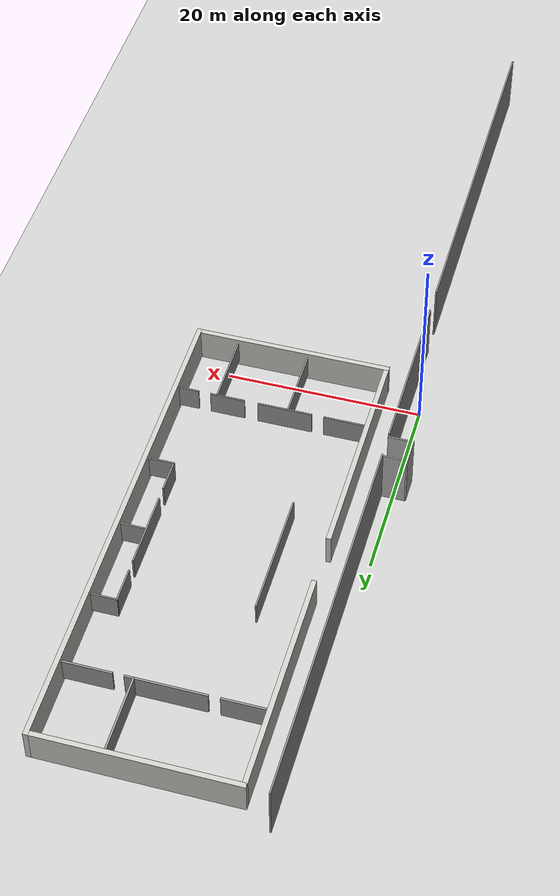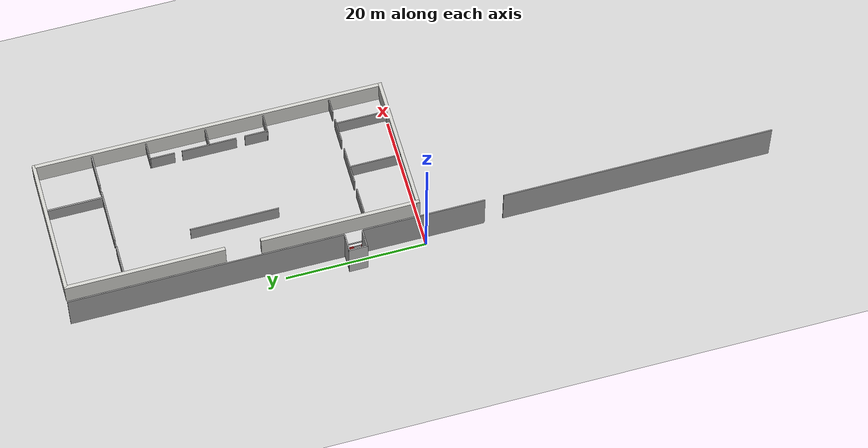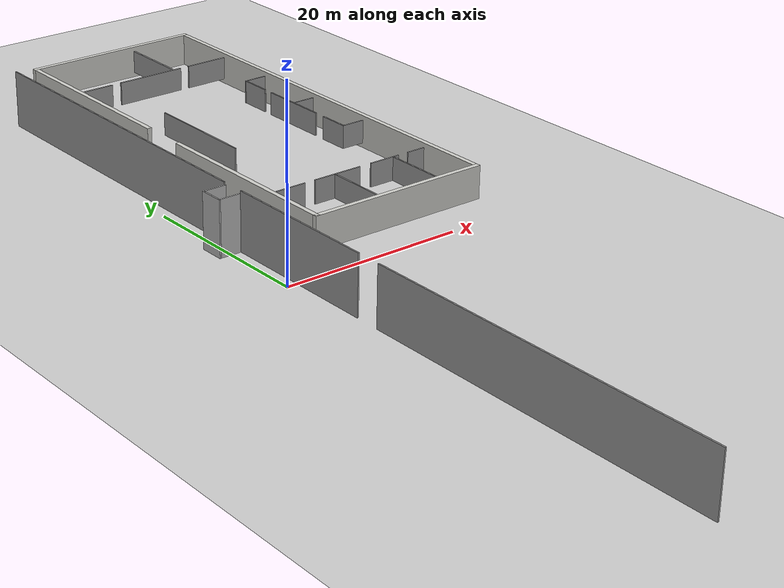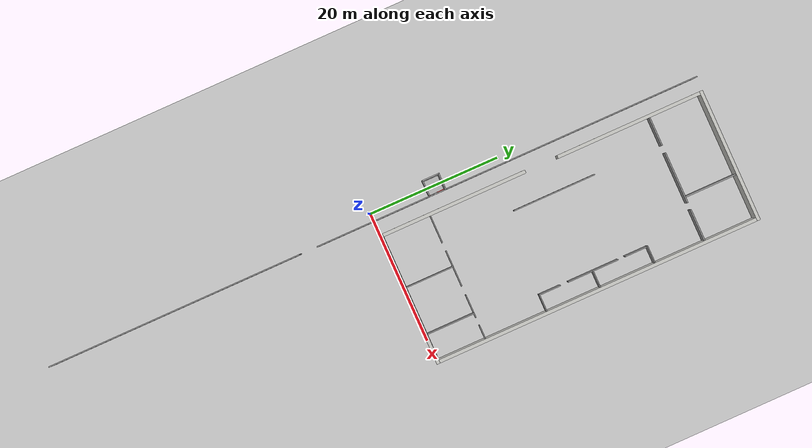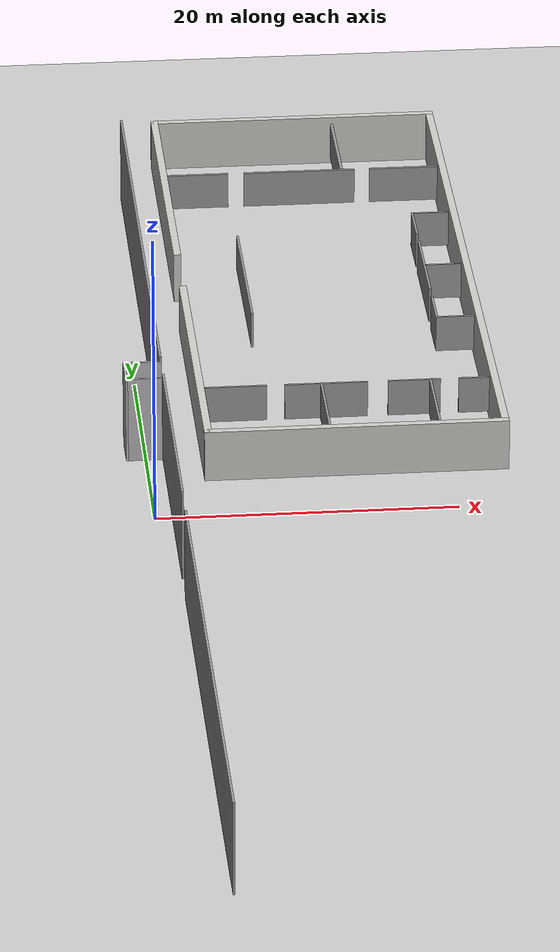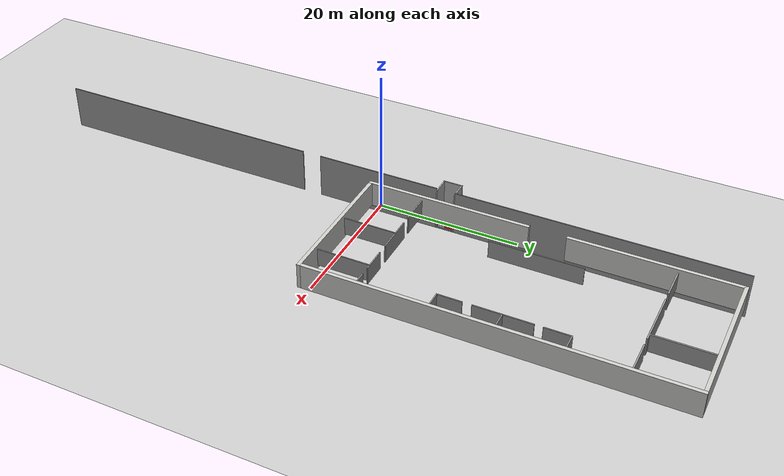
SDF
<sdf version="1.6">
 <world name="default">
  <model name="ground_plane">
   <static>1</static>
   <link name="link">
    <collision name="collision">
     <geometry><plane><normal>0 0 1</normal><size>100 100</size></plane></geometry>
     <surface><friction><ode><mu>100</mu><mu2>50</mu2></ode></friction></surface>
    </collision>
    <visual name="visual">
     <cast_shadows>0</cast_shadows>
     <geometry><plane><normal>0 0 1</normal><size>100 100</size></plane></geometry>
     <material>
      <script><uri>file://media/materials/scripts/gazebo.material</uri><name>Gazebo/Grey</name></script>
     </material>
    </visual>
   </link>
  </model>
  <model name="elevator">
   <pose>-0 10 0.074994 0 -1.1e-05 1e-06</pose>
   <joint name="lift" type="prismatic">
    <parent>world</parent>
    <child>link</child>
    <axis>
     <xyz>0 0 1</xyz>
     <limit><lower>0</lower><upper>10</upper><effort>100000</effort></limit>
     <dynamics>
      <damping>50</damping>
      <spring_reference>0</spring_reference>
      <spring_stiffness>0</spring_stiffness>
     </dynamics>
     <use_parent_model_frame>0</use_parent_model_frame>
    </axis>
    <physics>
     <ode><implicit_spring_damper>1</implicit_spring_damper><limit><cfm>0</cfm><erp>0.2</erp></limit></ode>
    </physics>
   </joint>
   <link name="link">
    <inertial>
     <mass>800</mass>
     <inertia><ixx>1</ixx><ixy>0</ixy><ixz>0</ixz><iyy>1</iyy><iyz>0</iyz><izz>1</izz></inertia>
    </inertial>
    <collision name="floor_collision"><geometry><box><size>2.25 2.25 0.15</size></box></geometry></collision>
    <visual name="floor_visual"><geometry><box><size>2.25 2.25 0.15</size></box></geometry></visual>
    <collision name="wall1_collision">
     <pose>1.0745 0.5725 1.125 0 -0 0</pose>
     <geometry><box><size>0.1 1.15 2.25</size></box></geometry>
    </collision>
    <visual name="wall1_visual">
     <pose>1.0745 0.5725 1.125 0 -0 0</pose>
     <geometry><box><size>0.1 1.15 2.25</size></box></geometry>
     <material><script><name>Gazebo/Red</name><uri>__default__</uri></script></material>
    </visual>
    <collision name="wall2_collision">
     <pose>1.0745 -1.0625 1.125 0 -0 0</pose>
     <geometry><box><size>0.1 0.125 2.25</size></box></geometry>
    </collision>
    <visual name="wall2_visual">
     <pose>1.0745 -1.0625 1.125 0 -0 0</pose>
     <geometry><box><size>0.1 0.125 2.25</size></box></geometry>
     <material><script><name>Gazebo/Red</name><uri>__default__</uri></script></material>
    </visual>
   </link>
   <joint name="door" type="prismatic">
    <parent>link</parent>
    <child>door</child>
    <axis>
     <xyz>0 1 0</xyz>
     <limit><lower>0</lower><upper>1</upper><effort>10</effort></limit>
     <dynamics>
      <damping>2</damping>
      <spring_reference>0</spring_reference>
      <spring_stiffness>0</spring_stiffness>
     </dynamics>
     <use_parent_model_frame>0</use_parent_model_frame>
    </axis>
   </joint>
   <link name="door">
    <pose>1.0745 -0.5 1.125 0 -0 0</pose>
    <inertial>
     <inertia><ixx>1</ixx><ixy>0</ixy><ixz>0</ixz><iyy>1</iyy><iyz>0</iyz><izz>1</izz></inertia>
     <mass>1</mass>
    </inertial>
    <collision name="collision"><geometry><box><size>0.08 1 2.25</size></box></geometry></collision>
    <visual name="visual"><geometry><box><size>0.08 1 2.25</size></box></geometry></visual>
   </link>
   <plugin name="elevator1_plugin" filename="libgazebo_ros_elevator.so">
    <lift_joint>elevator::lift</lift_joint>
    <door_joint>elevator::door</door_joint>
    <floor_height>3.085</floor_height>
    <door_wait_time>10</door_wait_time>
    <topic>gazebo/elevator1</topic>
   </plugin>
  </model>
  <model name="elevator_shaft">
   <static>1</static>
   <link name="link">
    <collision name="shaft_wall1_collision">
     <pose>0 1.25 3 0 -0 0</pose>
     <geometry><box><size>2.5 0.15 6</size></box></geometry>
    </collision>
    <visual name="shaft_wall1_visual">
     <pose>0 1.25 3 0 -0 0</pose>
     <geometry><box><size>2.5 0.15 6</size></box></geometry>
    </visual>
    <collision name="shaft_wall2_collision">
     <pose>0 -1.25 3 0 -0 0</pose>
     <geometry><box><size>2.5 0.15 6</size></box></geometry>
    </collision>
    <visual name="shaft_wall2_visual">
     <pose>0 -1.25 3 0 -0 0</pose>
     <geometry><box><size>2.5 0.15 6</size></box></geometry>
    </visual>
    <collision name="shaft_wall3_collision">
     <pose>-1.25 0 3 0 -0 0</pose>
     <geometry><box><size>0.15 2.7 6</size></box></geometry>
    </collision>
    <visual name="shaft_wall3_visual">
     <pose>-1.25 0 3 0 -0 0</pose>
     <geometry><box><size>0.15 2.7 6</size></box></geometry>
    </visual>
    <collision name="floor0_collision">
     <pose>1.19 0 0.075 0 -0 0</pose>
     <geometry><box><size>0.12 2.5 0.15</size></box></geometry>
    </collision>
    <visual name="floor0_visual">
     <pose>1.19 0 0.075 0 -0 0</pose>
     <geometry><box><size>0.12 2.5 0.15</size></box></geometry>
    </visual>
    <collision name="floor1_collision">
     <pose>1.19 0 3.075 0 -0 0</pose>
     <geometry><box><size>0.12 2.5 0.15</size></box></geometry>
    </collision>
    <visual name="floor1_visual">
     <pose>1.19 0 3.075 0 -0 0</pose>
     <geometry><box><size>0.12 2.5 0.15</size></box></geometry>
    </visual>
   </link>
   <pose>0 10 0 0 -0 0</pose>
  </model>
  <model name="office_clone_clone_0">
   <link name="Wall_1">
    <pose>-24.75 -3e-06 0 0 0 -1.5708</pose>
    <inertial>
     <mass>1</mass>
     <inertia><ixx>1</ixx><ixy>0</ixy><ixz>0</ixz><iyy>1</iyy><iyz>0</iyz><izz>1</izz></inertia>
    </inertial>
    <visual name="Wall_1_Visual">
     <pose>0 0 1.25 0 -0 0</pose>
     <geometry><box><size>20 0.5 3.5</size></box></geometry>
     <material>
      <script><uri>file://media/materials/scripts/gazebo.material</uri><name>Gazebo/CeilingTiled</name></script>
      <ambient>1 1 1 1</ambient>
      <shader type="vertex"><normal_map>__default__</normal_map></shader>
      <diffuse>1 1 1 1</diffuse>
      <specular>0 0 0 1</specular>
      <emissive>0 0 0 1</emissive>
     </material>
     <meta><layer>0</layer></meta>
    </visual>
    <collision name="Wall_1_Collision">
     <pose>0 0 1.25 0 -0 0</pose>
     <geometry><box><size>20 0.5 3.5</size></box></geometry>
     <surface>
      <friction>
       <ode><mu>1</mu><mu2>1</mu2><fdir1>0 0 0</fdir1><slip1>0</slip1><slip2>0</slip2></ode>
       <torsional>
        <coefficient>1</coefficient>
        <patch_radius>0</patch_radius>
        <surface_radius>0</surface_radius>
        <use_patch_radius>1</use_patch_radius>
        <ode><slip>0</slip></ode>
       </torsional>
      </friction>
      <bounce><restitution_coefficient>0</restitution_coefficient><threshold>1e+06</threshold></bounce>
      <contact>
       <collide_without_contact>0</collide_without_contact>
       <collide_without_contact_bitmask>1</collide_without_contact_bitmask>
       <collide_bitmask>1</collide_bitmask>
       <ode>
        <soft_cfm>0</soft_cfm>
        <soft_erp>0.2</soft_erp>
        <kp>1e+13</kp>
        <kd>1</kd>
        <max_vel>0.01</max_vel>
        <min_depth>0</min_depth>
       </ode>
       <bullet>
        <split_impulse>1</split_impulse>
        <split_impulse_penetration_threshold>-0.01</split_impulse_penetration_threshold>
        <soft_cfm>0</soft_cfm>
        <soft_erp>0.2</soft_erp>
        <kp>1e+13</kp>
        <kd>1</kd>
       </bullet>
      </contact>
     </surface>
    </collision>
   </link>
   <link name="Wall_11">
    <pose>24.75 3e-06 0 0 0 -1.5708</pose>
    <inertial>
     <mass>1</mass>
     <inertia><ixx>1</ixx><ixy>0</ixy><ixz>0</ixz><iyy>1</iyy><iyz>0</iyz><izz>1</izz></inertia>
    </inertial>
    <visual name="Wall_11_Visual">
     <pose>0 0 1.25 0 -0 0</pose>
     <geometry><box><size>20 0.5 3.5</size></box></geometry>
     <material>
      <script><uri>file://media/materials/scripts/gazebo.material</uri><name>Gazebo/CeilingTiled</name></script>
      <ambient>1 1 1 1</ambient>
      <shader type="vertex"><normal_map>__default__</normal_map></shader>
      <diffuse>1 1 1 1</diffuse>
      <specular>0 0 0 1</specular>
      <emissive>0 0 0 1</emissive>
     </material>
     <meta><layer>0</layer></meta>
    </visual>
    <collision name="Wall_11_Collision">
     <pose>0 0 1.25 0 -0 0</pose>
     <geometry><box><size>20 0.5 3.5</size></box></geometry>
     <surface>
      <friction>
       <ode><mu>1</mu><mu2>1</mu2><fdir1>0 0 0</fdir1><slip1>0</slip1><slip2>0</slip2></ode>
       <torsional>
        <coefficient>1</coefficient>
        <patch_radius>0</patch_radius>
        <surface_radius>0</surface_radius>
        <use_patch_radius>1</use_patch_radius>
        <ode><slip>0</slip></ode>
       </torsional>
      </friction>
      <bounce><restitution_coefficient>0</restitution_coefficient><threshold>1e+06</threshold></bounce>
      <contact>
       <collide_without_contact>0</collide_without_contact>
       <collide_without_contact_bitmask>1</collide_without_contact_bitmask>
       <collide_bitmask>1</collide_bitmask>
       <ode>
        <soft_cfm>0</soft_cfm>
        <soft_erp>0.2</soft_erp>
        <kp>1e+13</kp>
        <kd>1</kd>
        <max_vel>0.01</max_vel>
        <min_depth>0</min_depth>
       </ode>
       <bullet>
        <split_impulse>1</split_impulse>
        <split_impulse_penetration_threshold>-0.01</split_impulse_penetration_threshold>
        <soft_cfm>0</soft_cfm>
        <soft_erp>0.2</soft_erp>
        <kp>1e+13</kp>
        <kd>1</kd>
       </bullet>
      </contact>
     </surface>
    </collision>
   </link>
   <link name="Wall_13">
    <pose>-16.658 7.127 0 0 0 -1.5708</pose>
    <visual name="Wall_13_Visual">
     <pose>0 0 1.25 0 -0 0</pose>
     <geometry><box><size>4.80017 0.2 2.5</size></box></geometry>
     <material>
      <script><uri>file://media/materials/scripts/gazebo.material</uri><name>Gazebo/Grey</name></script>
      <ambient>1 1 1 1</ambient>
     </material>
     <meta><layer>0</layer></meta>
    </visual>
    <collision name="Wall_13_Collision">
     <pose>0 0 1.25 0 -0 0</pose>
     <geometry><box><size>4.80017 0.2 2.5</size></box></geometry>
     <surface>
      <friction>
       <ode><mu>1</mu><mu2>1</mu2><fdir1>0 0 0</fdir1><slip1>0</slip1><slip2>0</slip2></ode>
       <torsional>
        <coefficient>1</coefficient>
        <patch_radius>0</patch_radius>
        <surface_radius>0</surface_radius>
        <use_patch_radius>1</use_patch_radius>
        <ode><slip>0</slip></ode>
       </torsional>
      </friction>
      <bounce><restitution_coefficient>0</restitution_coefficient><threshold>1e+06</threshold></bounce>
      <contact>
       <collide_without_contact>0</collide_without_contact>
       <collide_without_contact_bitmask>1</collide_without_contact_bitmask>
       <collide_bitmask>1</collide_bitmask>
       <ode>
        <soft_cfm>0</soft_cfm>
        <soft_erp>0.2</soft_erp>
        <kp>1e+13</kp>
        <kd>1</kd>
        <max_vel>0.01</max_vel>
        <min_depth>0</min_depth>
       </ode>
       <bullet>
        <split_impulse>1</split_impulse>
        <split_impulse_penetration_threshold>-0.01</split_impulse_penetration_threshold>
        <soft_cfm>0</soft_cfm>
        <soft_erp>0.2</soft_erp>
        <kp>1e+13</kp>
        <kd>1</kd>
       </bullet>
      </contact>
     </surface>
    </collision>
   </link>
   <link name="Wall_15">
    <pose>-16.658 -0.198 0 0 0 -1.5708</pose>
    <visual name="Wall_15_Visual">
     <pose>0 0 1.25 0 -0 0</pose>
     <geometry><box><size>7.75 0.2 2.5</size></box></geometry>
     <material>
      <script><uri>file://media/materials/scripts/gazebo.material</uri><name>Gazebo/Grey</name></script>
      <ambient>1 1 1 1</ambient>
     </material>
     <meta><layer>0</layer></meta>
    </visual>
    <collision name="Wall_15_Collision">
     <pose>0 0 1.25 0 -0 0</pose>
     <geometry><box><size>7.75 0.2 2.5</size></box></geometry>
     <surface>
      <friction>
       <ode><mu>1</mu><mu2>1</mu2><fdir1>0 0 0</fdir1><slip1>0</slip1><slip2>0</slip2></ode>
       <torsional>
        <coefficient>1</coefficient>
        <patch_radius>0</patch_radius>
        <surface_radius>0</surface_radius>
        <use_patch_radius>1</use_patch_radius>
        <ode><slip>0</slip></ode>
       </torsional>
      </friction>
      <bounce><restitution_coefficient>0</restitution_coefficient><threshold>1e+06</threshold></bounce>
      <contact>
       <collide_without_contact>0</collide_without_contact>
       <collide_without_contact_bitmask>1</collide_without_contact_bitmask>
       <collide_bitmask>1</collide_bitmask>
       <ode>
        <soft_cfm>0</soft_cfm>
        <soft_erp>0.2</soft_erp>
        <kp>1e+13</kp>
        <kd>1</kd>
        <max_vel>0.01</max_vel>
        <min_depth>0</min_depth>
       </ode>
       <bullet>
        <split_impulse>1</split_impulse>
        <split_impulse_penetration_threshold>-0.01</split_impulse_penetration_threshold>
        <soft_cfm>0</soft_cfm>
        <soft_erp>0.2</soft_erp>
        <kp>1e+13</kp>
        <kd>1</kd>
       </bullet>
      </contact>
     </surface>
    </collision>
   </link>
   <link name="Wall_17">
    <pose>-16.658 -7.423 0 0 0 -1.5708</pose>
    <visual name="Wall_17_Visual">
     <pose>0 0 1.25 0 -0 0</pose>
     <geometry><box><size>4.5 0.2 2.5</size></box></geometry>
     <material>
      <script><uri>file://media/materials/scripts/gazebo.material</uri><name>Gazebo/Grey</name></script>
      <ambient>1 1 1 1</ambient>
     </material>
     <meta><layer>0</layer></meta>
    </visual>
    <collision name="Wall_17_Collision">
     <pose>0 0 1.25 0 -0 0</pose>
     <geometry><box><size>4.5 0.2 2.5</size></box></geometry>
     <surface>
      <friction>
       <ode><mu>1</mu><mu2>1</mu2><fdir1>0 0 0</fdir1><slip1>0</slip1><slip2>0</slip2></ode>
       <torsional>
        <coefficient>1</coefficient>
        <patch_radius>0</patch_radius>
        <surface_radius>0</surface_radius>
        <use_patch_radius>1</use_patch_radius>
        <ode><slip>0</slip></ode>
       </torsional>
      </friction>
      <bounce><restitution_coefficient>0</restitution_coefficient><threshold>1e+06</threshold></bounce>
      <contact>
       <collide_without_contact>0</collide_without_contact>
       <collide_without_contact_bitmask>1</collide_without_contact_bitmask>
       <collide_bitmask>1</collide_bitmask>
       <ode>
        <soft_cfm>0</soft_cfm>
        <soft_erp>0.2</soft_erp>
        <kp>1e+13</kp>
        <kd>1</kd>
        <max_vel>0.01</max_vel>
        <min_depth>0</min_depth>
       </ode>
       <bullet>
        <split_impulse>1</split_impulse>
        <split_impulse_penetration_threshold>-0.01</split_impulse_penetration_threshold>
        <soft_cfm>0</soft_cfm>
        <soft_erp>0.2</soft_erp>
        <kp>1e+13</kp>
        <kd>1</kd>
       </bullet>
      </contact>
     </surface>
    </collision>
   </link>
   <link name="Wall_19">
    <pose>-20.703 2.792 0 0 -0 0</pose>
    <visual name="Wall_19_Visual">
     <pose>0 0 1.25 0 -0 0</pose>
     <geometry><box><size>8.04985 0.2 2.5</size></box></geometry>
     <material>
      <script><uri>file://media/materials/scripts/gazebo.material</uri><name>Gazebo/Grey</name></script>
      <ambient>1 1 1 1</ambient>
     </material>
     <meta><layer>0</layer></meta>
    </visual>
    <collision name="Wall_19_Collision">
     <pose>0 0 1.25 0 -0 0</pose>
     <geometry><box><size>8.04985 0.2 2.5</size></box></geometry>
     <surface>
      <friction>
       <ode><mu>1</mu><mu2>1</mu2><fdir1>0 0 0</fdir1><slip1>0</slip1><slip2>0</slip2></ode>
       <torsional>
        <coefficient>1</coefficient>
        <patch_radius>0</patch_radius>
        <surface_radius>0</surface_radius>
        <use_patch_radius>1</use_patch_radius>
        <ode><slip>0</slip></ode>
       </torsional>
      </friction>
      <bounce><restitution_coefficient>0</restitution_coefficient><threshold>1e+06</threshold></bounce>
      <contact>
       <collide_without_contact>0</collide_without_contact>
       <collide_without_contact_bitmask>1</collide_without_contact_bitmask>
       <collide_bitmask>1</collide_bitmask>
       <ode>
        <soft_cfm>0</soft_cfm>
        <soft_erp>0.2</soft_erp>
        <kp>1e+13</kp>
        <kd>1</kd>
        <max_vel>0.01</max_vel>
        <min_depth>0</min_depth>
       </ode>
       <bullet>
        <split_impulse>1</split_impulse>
        <split_impulse_penetration_threshold>-0.01</split_impulse_penetration_threshold>
        <soft_cfm>0</soft_cfm>
        <soft_erp>0.2</soft_erp>
        <kp>1e+13</kp>
        <kd>1</kd>
       </bullet>
      </contact>
     </surface>
    </collision>
   </link>
   <link name="Wall_21">
    <pose>17.2839 8.57905 0 0 0 -1.57072</pose>
    <visual name="Wall_21_Visual">
     <pose>0 0 1.25 0 -0 0</pose>
     <geometry><box><size>2.25 0.15 2.5</size></box></geometry>
     <material>
      <script><uri>file://media/materials/scripts/gazebo.material</uri><name>Gazebo/Grey</name></script>
      <ambient>1 1 1 1</ambient>
     </material>
     <meta><layer>0</layer></meta>
    </visual>
    <collision name="Wall_21_Collision">
     <pose>0 0 1.25 0 -0 0</pose>
     <geometry><box><size>2.25 0.15 2.5</size></box></geometry>
     <surface>
      <friction>
       <ode><mu>1</mu><mu2>1</mu2><fdir1>0 0 0</fdir1><slip1>0</slip1><slip2>0</slip2></ode>
       <torsional>
        <coefficient>1</coefficient>
        <patch_radius>0</patch_radius>
        <surface_radius>0</surface_radius>
        <use_patch_radius>1</use_patch_radius>
        <ode><slip>0</slip></ode>
       </torsional>
      </friction>
      <bounce><restitution_coefficient>0</restitution_coefficient><threshold>1e+06</threshold></bounce>
      <contact>
       <collide_without_contact>0</collide_without_contact>
       <collide_without_contact_bitmask>1</collide_without_contact_bitmask>
       <collide_bitmask>1</collide_bitmask>
       <ode>
        <soft_cfm>0</soft_cfm>
        <soft_erp>0.2</soft_erp>
        <kp>1e+13</kp>
        <kd>1</kd>
        <max_vel>0.01</max_vel>
        <min_depth>0</min_depth>
       </ode>
       <bullet>
        <split_impulse>1</split_impulse>
        <split_impulse_penetration_threshold>-0.01</split_impulse_penetration_threshold>
        <soft_cfm>0</soft_cfm>
        <soft_erp>0.2</soft_erp>
        <kp>1e+13</kp>
        <kd>1</kd>
       </bullet>
      </contact>
     </surface>
    </collision>
   </link>
   <link name="Wall_23">
    <pose>17.2838 4.5041 0 0 0 -1.5708</pose>
    <visual name="Wall_23_Visual">
     <pose>0 0 1.25 0 -0 0</pose>
     <geometry><box><size>3.5 0.15 2.5</size></box></geometry>
     <material>
      <script><uri>file://media/materials/scripts/gazebo.material</uri><name>Gazebo/Grey</name></script>
      <ambient>1 1 1 1</ambient>
     </material>
     <meta><layer>0</layer></meta>
    </visual>
    <collision name="Wall_23_Collision">
     <pose>0 0 1.25 0 -0 0</pose>
     <geometry><box><size>3.5 0.15 2.5</size></box></geometry>
     <surface>
      <friction>
       <ode><mu>1</mu><mu2>1</mu2><fdir1>0 0 0</fdir1><slip1>0</slip1><slip2>0</slip2></ode>
       <torsional>
        <coefficient>1</coefficient>
        <patch_radius>0</patch_radius>
        <surface_radius>0</surface_radius>
        <use_patch_radius>1</use_patch_radius>
        <ode><slip>0</slip></ode>
       </torsional>
      </friction>
      <bounce><restitution_coefficient>0</restitution_coefficient><threshold>1e+06</threshold></bounce>
      <contact>
       <collide_without_contact>0</collide_without_contact>
       <collide_without_contact_bitmask>1</collide_without_contact_bitmask>
       <collide_bitmask>1</collide_bitmask>
       <ode>
        <soft_cfm>0</soft_cfm>
        <soft_erp>0.2</soft_erp>
        <kp>1e+13</kp>
        <kd>1</kd>
        <max_vel>0.01</max_vel>
        <min_depth>0</min_depth>
       </ode>
       <bullet>
        <split_impulse>1</split_impulse>
        <split_impulse_penetration_threshold>-0.01</split_impulse_penetration_threshold>
        <soft_cfm>0</soft_cfm>
        <soft_erp>0.2</soft_erp>
        <kp>1e+13</kp>
        <kd>1</kd>
       </bullet>
      </contact>
     </surface>
    </collision>
   </link>
   <link name="Wall_25">
    <pose>17.2838 -1.3459 0 0 0 -1.5708</pose>
    <visual name="Wall_25_Visual">
     <pose>0 0 1.25 0 -0 0</pose>
     <geometry><box><size>5.5 0.15 2.5</size></box></geometry>
     <material>
      <script><uri>file://media/materials/scripts/gazebo.material</uri><name>Gazebo/Grey</name></script>
      <ambient>1 1 1 1</ambient>
     </material>
     <meta><layer>0</layer></meta>
    </visual>
    <collision name="Wall_25_Collision">
     <pose>0 0 1.25 0 -0 0</pose>
     <geometry><box><size>5.5 0.15 2.5</size></box></geometry>
     <surface>
      <friction>
       <ode><mu>1</mu><mu2>1</mu2><fdir1>0 0 0</fdir1><slip1>0</slip1><slip2>0</slip2></ode>
       <torsional>
        <coefficient>1</coefficient>
        <patch_radius>0</patch_radius>
        <surface_radius>0</surface_radius>
        <use_patch_radius>1</use_patch_radius>
        <ode><slip>0</slip></ode>
       </torsional>
      </friction>
      <bounce><restitution_coefficient>0</restitution_coefficient><threshold>1e+06</threshold></bounce>
      <contact>
       <collide_without_contact>0</collide_without_contact>
       <collide_without_contact_bitmask>1</collide_without_contact_bitmask>
       <collide_bitmask>1</collide_bitmask>
       <ode>
        <soft_cfm>0</soft_cfm>
        <soft_erp>0.2</soft_erp>
        <kp>1e+13</kp>
        <kd>1</kd>
        <max_vel>0.01</max_vel>
        <min_depth>0</min_depth>
       </ode>
       <bullet>
        <split_impulse>1</split_impulse>
        <split_impulse_penetration_threshold>-0.01</split_impulse_penetration_threshold>
        <soft_cfm>0</soft_cfm>
        <soft_erp>0.2</soft_erp>
        <kp>1e+13</kp>
        <kd>1</kd>
       </bullet>
      </contact>
     </surface>
    </collision>
   </link>
   <link name="Wall_27">
    <pose>17.2838 -7.4709 0 0 0 -1.5708</pose>
    <visual name="Wall_27_Visual">
     <pose>0 0 1.25 0 -0 0</pose>
     <geometry><box><size>4.35 0.15 2.5</size></box></geometry>
     <material>
      <script><uri>file://media/materials/scripts/gazebo.material</uri><name>Gazebo/Grey</name></script>
      <ambient>1 1 1 1</ambient>
     </material>
     <meta><layer>0</layer></meta>
    </visual>
    <collision name="Wall_27_Collision">
     <pose>0 0 1.25 0 -0 0</pose>
     <geometry><box><size>4.35 0.15 2.5</size></box></geometry>
     <surface>
      <friction>
       <ode><mu>1</mu><mu2>1</mu2><fdir1>0 0 0</fdir1><slip1>0</slip1><slip2>0</slip2></ode>
       <torsional>
        <coefficient>1</coefficient>
        <patch_radius>0</patch_radius>
        <surface_radius>0</surface_radius>
        <use_patch_radius>1</use_patch_radius>
        <ode><slip>0</slip></ode>
       </torsional>
      </friction>
      <bounce><restitution_coefficient>0</restitution_coefficient><threshold>1e+06</threshold></bounce>
      <contact>
       <collide_without_contact>0</collide_without_contact>
       <collide_without_contact_bitmask>1</collide_without_contact_bitmask>
       <collide_bitmask>1</collide_bitmask>
       <ode>
        <soft_cfm>0</soft_cfm>
        <soft_erp>0.2</soft_erp>
        <kp>1e+13</kp>
        <kd>1</kd>
        <max_vel>0.01</max_vel>
        <min_depth>0</min_depth>
       </ode>
       <bullet>
        <split_impulse>1</split_impulse>
        <split_impulse_penetration_threshold>-0.01</split_impulse_penetration_threshold>
        <soft_cfm>0</soft_cfm>
        <soft_erp>0.2</soft_erp>
        <kp>1e+13</kp>
        <kd>1</kd>
       </bullet>
      </contact>
     </surface>
    </collision>
   </link>
   <link name="Wall_29">
    <pose>20.9993 5.58355 0 0 -0 0</pose>
    <visual name="Wall_29_Visual">
     <pose>0 0 1.25 0 -0 0</pose>
     <geometry><box><size>7.5 0.15 2.5</size></box></geometry>
     <material>
      <script><uri>file://media/materials/scripts/gazebo.material</uri><name>Gazebo/Grey</name></script>
      <ambient>1 1 1 1</ambient>
     </material>
     <meta><layer>0</layer></meta>
    </visual>
    <collision name="Wall_29_Collision">
     <pose>0 0 1.25 0 -0 0</pose>
     <geometry><box><size>7.5 0.15 2.5</size></box></geometry>
     <surface>
      <friction>
       <ode><mu>1</mu><mu2>1</mu2><fdir1>0 0 0</fdir1><slip1>0</slip1><slip2>0</slip2></ode>
       <torsional>
        <coefficient>1</coefficient>
        <patch_radius>0</patch_radius>
        <surface_radius>0</surface_radius>
        <use_patch_radius>1</use_patch_radius>
        <ode><slip>0</slip></ode>
       </torsional>
      </friction>
      <bounce><restitution_coefficient>0</restitution_coefficient><threshold>1e+06</threshold></bounce>
      <contact>
       <collide_without_contact>0</collide_without_contact>
       <collide_without_contact_bitmask>1</collide_without_contact_bitmask>
       <collide_bitmask>1</collide_bitmask>
       <ode>
        <soft_cfm>0</soft_cfm>
        <soft_erp>0.2</soft_erp>
        <kp>1e+13</kp>
        <kd>1</kd>
        <max_vel>0.01</max_vel>
        <min_depth>0</min_depth>
       </ode>
       <bullet>
        <split_impulse>1</split_impulse>
        <split_impulse_penetration_threshold>-0.01</split_impulse_penetration_threshold>
        <soft_cfm>0</soft_cfm>
        <soft_erp>0.2</soft_erp>
        <kp>1e+13</kp>
        <kd>1</kd>
       </bullet>
      </contact>
     </surface>
    </collision>
   </link>
   <link name="Wall_3">
    <pose>-1e-06 9.75 0 0 -0 0</pose>
    <inertial>
     <mass>1</mass>
     <inertia><ixx>1</ixx><ixy>0</ixy><ixz>0</ixz><iyy>1</iyy><iyz>0</iyz><izz>1</izz></inertia>
    </inertial>
    <visual name="Wall_3_Visual">
     <pose>0 0 1.25 0 -0 0</pose>
     <geometry><box><size>50 0.5 3.5</size></box></geometry>
     <material>
      <script><uri>file://media/materials/scripts/gazebo.material</uri><name>Gazebo/CeilingTiled</name></script>
      <ambient>1 1 1 1</ambient>
      <shader type="vertex"><normal_map>__default__</normal_map></shader>
      <diffuse>1 1 1 1</diffuse>
      <specular>0 0 0 1</specular>
      <emissive>0 0 0 1</emissive>
     </material>
     <meta><layer>0</layer></meta>
    </visual>
    <collision name="Wall_3_Collision">
     <pose>0 0 1.25 0 -0 0</pose>
     <geometry><box><size>50 0.5 3.5</size></box></geometry>
     <surface>
      <friction>
       <ode><mu>1</mu><mu2>1</mu2><fdir1>0 0 0</fdir1><slip1>0</slip1><slip2>0</slip2></ode>
       <torsional>
        <coefficient>1</coefficient>
        <patch_radius>0</patch_radius>
        <surface_radius>0</surface_radius>
        <use_patch_radius>1</use_patch_radius>
        <ode><slip>0</slip></ode>
       </torsional>
      </friction>
      <bounce><restitution_coefficient>0</restitution_coefficient><threshold>1e+06</threshold></bounce>
      <contact>
       <collide_without_contact>0</collide_without_contact>
       <collide_without_contact_bitmask>1</collide_without_contact_bitmask>
       <collide_bitmask>1</collide_bitmask>
       <ode>
        <soft_cfm>0</soft_cfm>
        <soft_erp>0.2</soft_erp>
        <kp>1e+13</kp>
        <kd>1</kd>
        <max_vel>0.01</max_vel>
        <min_depth>0</min_depth>
       </ode>
       <bullet>
        <split_impulse>1</split_impulse>
        <split_impulse_penetration_threshold>-0.01</split_impulse_penetration_threshold>
        <soft_cfm>0</soft_cfm>
        <soft_erp>0.2</soft_erp>
        <kp>1e+13</kp>
        <kd>1</kd>
       </bullet>
      </contact>
     </surface>
    </collision>
   </link>
   <link name="Wall_31">
    <pose>20.9993 -1.658 0 0 -0 0</pose>
    <visual name="Wall_31_Visual">
     <pose>0 0 1.25 0 -0 0</pose>
     <geometry><box><size>7.5 0.15 2.5</size></box></geometry>
     <material>
      <script><uri>file://media/materials/scripts/gazebo.material</uri><name>Gazebo/Grey</name></script>
      <ambient>1 1 1 1</ambient>
     </material>
     <meta><layer>0</layer></meta>
    </visual>
    <collision name="Wall_31_Collision">
     <pose>0 0 1.25 0 -0 0</pose>
     <geometry><box><size>7.5 0.15 2.5</size></box></geometry>
     <surface>
      <friction>
       <ode><mu>1</mu><mu2>1</mu2><fdir1>0 0 0</fdir1><slip1>0</slip1><slip2>0</slip2></ode>
       <torsional>
        <coefficient>1</coefficient>
        <patch_radius>0</patch_radius>
        <surface_radius>0</surface_radius>
        <use_patch_radius>1</use_patch_radius>
        <ode><slip>0</slip></ode>
       </torsional>
      </friction>
      <bounce><restitution_coefficient>0</restitution_coefficient><threshold>1e+06</threshold></bounce>
      <contact>
       <collide_without_contact>0</collide_without_contact>
       <collide_without_contact_bitmask>1</collide_without_contact_bitmask>
       <collide_bitmask>1</collide_bitmask>
       <ode>
        <soft_cfm>0</soft_cfm>
        <soft_erp>0.2</soft_erp>
        <kp>1e+13</kp>
        <kd>1</kd>
        <max_vel>0.01</max_vel>
        <min_depth>0</min_depth>
       </ode>
       <bullet>
        <split_impulse>1</split_impulse>
        <split_impulse_penetration_threshold>-0.01</split_impulse_penetration_threshold>
        <soft_cfm>0</soft_cfm>
        <soft_erp>0.2</soft_erp>
        <kp>1e+13</kp>
        <kd>1</kd>
       </bullet>
      </contact>
     </surface>
    </collision>
   </link>
   <link name="Wall_34">
    <pose>-8.97184 8.28865 0 0 0 -1.5708</pose>
    <visual name="Wall_34_Visual">
     <pose>0 0 1.25 0 -0 0</pose>
     <geometry><box><size>2.75032 0.15 2.5</size></box></geometry>
     <material>
      <script><uri>file://media/materials/scripts/gazebo.material</uri><name>Gazebo/Grey</name></script>
      <ambient>1 1 1 1</ambient>
     </material>
     <meta><layer>0</layer></meta>
    </visual>
    <collision name="Wall_34_Collision">
     <pose>0 0 1.25 0 -0 0</pose>
     <geometry><box><size>2.75032 0.15 2.5</size></box></geometry>
     <surface>
      <friction>
       <ode><mu>1</mu><mu2>1</mu2><fdir1>0 0 0</fdir1><slip1>0</slip1><slip2>0</slip2></ode>
       <torsional>
        <coefficient>1</coefficient>
        <patch_radius>0</patch_radius>
        <surface_radius>0</surface_radius>
        <use_patch_radius>1</use_patch_radius>
        <ode><slip>0</slip></ode>
       </torsional>
      </friction>
      <bounce><restitution_coefficient>0</restitution_coefficient><threshold>1e+06</threshold></bounce>
      <contact>
       <collide_without_contact>0</collide_without_contact>
       <collide_without_contact_bitmask>1</collide_without_contact_bitmask>
       <collide_bitmask>1</collide_bitmask>
       <ode>
        <soft_cfm>0</soft_cfm>
        <soft_erp>0.2</soft_erp>
        <kp>1e+13</kp>
        <kd>1</kd>
        <max_vel>0.01</max_vel>
        <min_depth>0</min_depth>
       </ode>
       <bullet>
        <split_impulse>1</split_impulse>
        <split_impulse_penetration_threshold>-0.01</split_impulse_penetration_threshold>
        <soft_cfm>0</soft_cfm>
        <soft_erp>0.2</soft_erp>
        <kp>1e+13</kp>
        <kd>1</kd>
       </bullet>
      </contact>
     </surface>
    </collision>
   </link>
   <link name="Wall_35">
    <pose>-7.25638 6.98865 0 0 -0 0</pose>
    <visual name="Wall_35_Visual">
     <pose>0 0 1.25 0 -0 0</pose>
     <geometry><box><size>3.5 0.15 2.5</size></box></geometry>
     <material>
      <script><uri>file://media/materials/scripts/gazebo.material</uri><name>Gazebo/Grey</name></script>
      <ambient>1 1 1 1</ambient>
     </material>
     <meta><layer>0</layer></meta>
    </visual>
    <collision name="Wall_35_Collision">
     <pose>0 0 1.25 0 -0 0</pose>
     <geometry><box><size>3.5 0.15 2.5</size></box></geometry>
     <surface>
      <friction>
       <ode><mu>1</mu><mu2>1</mu2><fdir1>0 0 0</fdir1><slip1>0</slip1><slip2>0</slip2></ode>
       <torsional>
        <coefficient>1</coefficient>
        <patch_radius>0</patch_radius>
        <surface_radius>0</surface_radius>
        <use_patch_radius>1</use_patch_radius>
        <ode><slip>0</slip></ode>
       </torsional>
      </friction>
      <bounce><restitution_coefficient>0</restitution_coefficient><threshold>1e+06</threshold></bounce>
      <contact>
       <collide_without_contact>0</collide_without_contact>
       <collide_without_contact_bitmask>1</collide_without_contact_bitmask>
       <collide_bitmask>1</collide_bitmask>
       <ode>
        <soft_cfm>0</soft_cfm>
        <soft_erp>0.2</soft_erp>
        <kp>1e+13</kp>
        <kd>1</kd>
        <max_vel>0.01</max_vel>
        <min_depth>0</min_depth>
       </ode>
       <bullet>
        <split_impulse>1</split_impulse>
        <split_impulse_penetration_threshold>-0.01</split_impulse_penetration_threshold>
        <soft_cfm>0</soft_cfm>
        <soft_erp>0.2</soft_erp>
        <kp>1e+13</kp>
        <kd>1</kd>
       </bullet>
      </contact>
     </surface>
    </collision>
   </link>
   <link name="Wall_37">
    <pose>-0.572 6.989 0 0 -0 0</pose>
    <visual name="Wall_37_Visual">
     <pose>0 0 1.25 0 -0 0</pose>
     <geometry><box><size>7.75 0.15 2.5</size></box></geometry>
     <material>
      <script><uri>file://media/materials/scripts/gazebo.material</uri><name>Gazebo/Grey</name></script>
      <ambient>1 1 1 1</ambient>
     </material>
     <meta><layer>0</layer></meta>
    </visual>
    <collision name="Wall_37_Collision">
     <pose>0 0 1.25 0 -0 0</pose>
     <geometry><box><size>7.75 0.15 2.5</size></box></geometry>
     <surface>
      <friction>
       <ode><mu>1</mu><mu2>1</mu2><fdir1>0 0 0</fdir1><slip1>0</slip1><slip2>0</slip2></ode>
       <torsional>
        <coefficient>1</coefficient>
        <patch_radius>0</patch_radius>
        <surface_radius>0</surface_radius>
        <use_patch_radius>1</use_patch_radius>
        <ode><slip>0</slip></ode>
       </torsional>
      </friction>
      <bounce><restitution_coefficient>0</restitution_coefficient><threshold>1e+06</threshold></bounce>
      <contact>
       <collide_without_contact>0</collide_without_contact>
       <collide_without_contact_bitmask>1</collide_without_contact_bitmask>
       <collide_bitmask>1</collide_bitmask>
       <ode>
        <soft_cfm>0</soft_cfm>
        <soft_erp>0.2</soft_erp>
        <kp>1e+13</kp>
        <kd>1</kd>
        <max_vel>0.01</max_vel>
        <min_depth>0</min_depth>
       </ode>
       <bullet>
        <split_impulse>1</split_impulse>
        <split_impulse_penetration_threshold>-0.01</split_impulse_penetration_threshold>
        <soft_cfm>0</soft_cfm>
        <soft_erp>0.2</soft_erp>
        <kp>1e+13</kp>
        <kd>1</kd>
       </bullet>
      </contact>
     </surface>
    </collision>
   </link>
   <link name="Wall_39">
    <pose>6.17808 6.98882 0 0 0 -0.00011</pose>
    <visual name="Wall_39_Visual">
     <pose>0 0 1.25 0 -0 0</pose>
     <geometry><box><size>3.35 0.15 2.5</size></box></geometry>
     <material>
      <script><uri>file://media/materials/scripts/gazebo.material</uri><name>Gazebo/Grey</name></script>
      <ambient>1 1 1 1</ambient>
     </material>
     <meta><layer>0</layer></meta>
    </visual>
    <collision name="Wall_39_Collision">
     <pose>0 0 1.25 0 -0 0</pose>
     <geometry><box><size>3.35 0.15 2.5</size></box></geometry>
     <surface>
      <friction>
       <ode><mu>1</mu><mu2>1</mu2><fdir1>0 0 0</fdir1><slip1>0</slip1><slip2>0</slip2></ode>
       <torsional>
        <coefficient>1</coefficient>
        <patch_radius>0</patch_radius>
        <surface_radius>0</surface_radius>
        <use_patch_radius>1</use_patch_radius>
        <ode><slip>0</slip></ode>
       </torsional>
      </friction>
      <bounce><restitution_coefficient>0</restitution_coefficient><threshold>1e+06</threshold></bounce>
      <contact>
       <collide_without_contact>0</collide_without_contact>
       <collide_without_contact_bitmask>1</collide_without_contact_bitmask>
       <collide_bitmask>1</collide_bitmask>
       <ode>
        <soft_cfm>0</soft_cfm>
        <soft_erp>0.2</soft_erp>
        <kp>1e+13</kp>
        <kd>1</kd>
        <max_vel>0.01</max_vel>
        <min_depth>0</min_depth>
       </ode>
       <bullet>
        <split_impulse>1</split_impulse>
        <split_impulse_penetration_threshold>-0.01</split_impulse_penetration_threshold>
        <soft_cfm>0</soft_cfm>
        <soft_erp>0.2</soft_erp>
        <kp>1e+13</kp>
        <kd>1</kd>
       </bullet>
      </contact>
     </surface>
    </collision>
   </link>
   <link name="Wall_40">
    <pose>7.77816 8.28865 0 0 -0 1.5708</pose>
    <visual name="Wall_40_Visual">
     <pose>0 0 1.25 0 -0 0</pose>
     <geometry><box><size>2.75 0.15 2.5</size></box></geometry>
     <material>
      <script><uri>file://media/materials/scripts/gazebo.material</uri><name>Gazebo/Grey</name></script>
      <ambient>1 1 1 1</ambient>
     </material>
     <meta><layer>0</layer></meta>
    </visual>
    <collision name="Wall_40_Collision">
     <pose>0 0 1.25 0 -0 0</pose>
     <geometry><box><size>2.75 0.15 2.5</size></box></geometry>
     <surface>
      <friction>
       <ode><mu>1</mu><mu2>1</mu2><fdir1>0 0 0</fdir1><slip1>0</slip1><slip2>0</slip2></ode>
       <torsional>
        <coefficient>1</coefficient>
        <patch_radius>0</patch_radius>
        <surface_radius>0</surface_radius>
        <use_patch_radius>1</use_patch_radius>
        <ode><slip>0</slip></ode>
       </torsional>
      </friction>
      <bounce><restitution_coefficient>0</restitution_coefficient><threshold>1e+06</threshold></bounce>
      <contact>
       <collide_without_contact>0</collide_without_contact>
       <collide_without_contact_bitmask>1</collide_without_contact_bitmask>
       <collide_bitmask>1</collide_bitmask>
       <ode>
        <soft_cfm>0</soft_cfm>
        <soft_erp>0.2</soft_erp>
        <kp>1e+13</kp>
        <kd>1</kd>
        <max_vel>0.01</max_vel>
        <min_depth>0</min_depth>
       </ode>
       <bullet>
        <split_impulse>1</split_impulse>
        <split_impulse_penetration_threshold>-0.01</split_impulse_penetration_threshold>
        <soft_cfm>0</soft_cfm>
        <soft_erp>0.2</soft_erp>
        <kp>1e+13</kp>
        <kd>1</kd>
       </bullet>
      </contact>
     </surface>
    </collision>
   </link>
   <link name="Wall_42">
    <pose>-0.516625 8.36956 0 0 0 -1.5708</pose>
    <visual name="Wall_42_Visual">
     <pose>0 0 1.25 0 -0 0</pose>
     <geometry><box><size>2.75 0.15 2.5</size></box></geometry>
     <material>
      <script><uri>file://media/materials/scripts/gazebo.material</uri><name>Gazebo/Grey</name></script>
      <ambient>1 1 1 1</ambient>
     </material>
     <meta><layer>0</layer></meta>
    </visual>
    <collision name="Wall_42_Collision">
     <pose>0 0 1.25 0 -0 0</pose>
     <geometry><box><size>2.75 0.15 2.5</size></box></geometry>
     <surface>
      <friction>
       <ode><mu>1</mu><mu2>1</mu2><fdir1>0 0 0</fdir1><slip1>0</slip1><slip2>0</slip2></ode>
       <torsional>
        <coefficient>1</coefficient>
        <patch_radius>0</patch_radius>
        <surface_radius>0</surface_radius>
        <use_patch_radius>1</use_patch_radius>
        <ode><slip>0</slip></ode>
       </torsional>
      </friction>
      <bounce><restitution_coefficient>0</restitution_coefficient><threshold>1e+06</threshold></bounce>
      <contact>
       <collide_without_contact>0</collide_without_contact>
       <collide_without_contact_bitmask>1</collide_without_contact_bitmask>
       <collide_bitmask>1</collide_bitmask>
       <ode>
        <soft_cfm>0</soft_cfm>
        <soft_erp>0.2</soft_erp>
        <kp>1e+13</kp>
        <kd>1</kd>
        <max_vel>0.01</max_vel>
        <min_depth>0</min_depth>
       </ode>
       <bullet>
        <split_impulse>1</split_impulse>
        <split_impulse_penetration_threshold>-0.01</split_impulse_penetration_threshold>
        <soft_cfm>0</soft_cfm>
        <soft_erp>0.2</soft_erp>
        <kp>1e+13</kp>
        <kd>1</kd>
       </bullet>
      </contact>
     </surface>
    </collision>
   </link>
   <link name="Wall_44">
    <pose>-0.086317 -5.33946 0 0 -0 0</pose>
    <visual name="Wall_44_Visual">
     <pose>0 0 1.25 0 -0 0</pose>
     <geometry><box><size>12.5 0.15 2.5</size></box></geometry>
     <material>
      <script><uri>file://media/materials/scripts/gazebo.material</uri><name>Gazebo/Grey</name></script>
      <ambient>1 1 1 1</ambient>
     </material>
     <meta><layer>0</layer></meta>
    </visual>
    <collision name="Wall_44_Collision">
     <pose>0 0 1.25 0 -0 0</pose>
     <geometry><box><size>12.5 0.15 2.5</size></box></geometry>
     <surface>
      <friction>
       <ode><mu>1</mu><mu2>1</mu2><fdir1>0 0 0</fdir1><slip1>0</slip1><slip2>0</slip2></ode>
       <torsional>
        <coefficient>1</coefficient>
        <patch_radius>0</patch_radius>
        <surface_radius>0</surface_radius>
        <use_patch_radius>1</use_patch_radius>
        <ode><slip>0</slip></ode>
       </torsional>
      </friction>
      <bounce><restitution_coefficient>0</restitution_coefficient><threshold>1e+06</threshold></bounce>
      <contact>
       <collide_without_contact>0</collide_without_contact>
       <collide_without_contact_bitmask>1</collide_without_contact_bitmask>
       <collide_bitmask>1</collide_bitmask>
       <ode>
        <soft_cfm>0</soft_cfm>
        <soft_erp>0.2</soft_erp>
        <kp>1e+13</kp>
        <kd>1</kd>
        <max_vel>0.01</max_vel>
        <min_depth>0</min_depth>
       </ode>
       <bullet>
        <split_impulse>1</split_impulse>
        <split_impulse_penetration_threshold>-0.01</split_impulse_penetration_threshold>
        <soft_cfm>0</soft_cfm>
        <soft_erp>0.2</soft_erp>
        <kp>1e+13</kp>
        <kd>1</kd>
       </bullet>
      </contact>
     </surface>
    </collision>
   </link>
   <link name="Wall_7">
    <pose>-13.75 -9.75 0 0 -0 0</pose>
    <inertial>
     <mass>1</mass>
     <inertia><ixx>1</ixx><ixy>0</ixy><ixz>0</ixz><iyy>1</iyy><iyz>0</iyz><izz>1</izz></inertia>
    </inertial>
    <visual name="Wall_7_Visual">
     <pose>0 0 1.25 0 -0 0</pose>
     <geometry><box><size>22.5 0.5 3.5</size></box></geometry>
     <material>
      <script><uri>file://media/materials/scripts/gazebo.material</uri><name>Gazebo/CeilingTiled</name></script>
      <ambient>1 1 1 1</ambient>
      <shader type="vertex"><normal_map>__default__</normal_map></shader>
      <diffuse>1 1 1 1</diffuse>
      <specular>0 0 0 1</specular>
      <emissive>0 0 0 1</emissive>
     </material>
     <meta><layer>0</layer></meta>
    </visual>
    <collision name="Wall_7_Collision">
     <pose>0 0 1.25 0 -0 0</pose>
     <geometry><box><size>22.5 0.5 3.5</size></box></geometry>
     <surface>
      <friction>
       <ode><mu>1</mu><mu2>1</mu2><fdir1>0 0 0</fdir1><slip1>0</slip1><slip2>0</slip2></ode>
       <torsional>
        <coefficient>1</coefficient>
        <patch_radius>0</patch_radius>
        <surface_radius>0</surface_radius>
        <use_patch_radius>1</use_patch_radius>
        <ode><slip>0</slip></ode>
       </torsional>
      </friction>
      <bounce><restitution_coefficient>0</restitution_coefficient><threshold>1e+06</threshold></bounce>
      <contact>
       <collide_without_contact>0</collide_without_contact>
       <collide_without_contact_bitmask>1</collide_without_contact_bitmask>
       <collide_bitmask>1</collide_bitmask>
       <ode>
        <soft_cfm>0</soft_cfm>
        <soft_erp>0.2</soft_erp>
        <kp>1e+13</kp>
        <kd>1</kd>
        <max_vel>0.01</max_vel>
        <min_depth>0</min_depth>
       </ode>
       <bullet>
        <split_impulse>1</split_impulse>
        <split_impulse_penetration_threshold>-0.01</split_impulse_penetration_threshold>
        <soft_cfm>0</soft_cfm>
        <soft_erp>0.2</soft_erp>
        <kp>1e+13</kp>
        <kd>1</kd>
       </bullet>
      </contact>
     </surface>
    </collision>
   </link>
   <link name="Wall_9">
    <pose>13.7296 -9.74954 0 0 -0 0</pose>
    <inertial>
     <mass>1</mass>
     <inertia><ixx>1</ixx><ixy>0</ixy><ixz>0</ixz><iyy>1</iyy><iyz>0</iyz><izz>1</izz></inertia>
    </inertial>
    <visual name="Wall_9_Visual">
     <pose>0 0 1.25 0 -0 0</pose>
     <geometry><box><size>22.5 0.5 3.5</size></box></geometry>
     <material>
      <script><uri>file://media/materials/scripts/gazebo.material</uri><name>Gazebo/CeilingTiled</name></script>
      <ambient>1 1 1 1</ambient>
      <shader type="vertex"><normal_map>__default__</normal_map></shader>
      <diffuse>1 1 1 1</diffuse>
      <specular>0 0 0 1</specular>
      <emissive>0 0 0 1</emissive>
     </material>
     <meta><layer>0</layer></meta>
    </visual>
    <collision name="Wall_9_Collision">
     <pose>0 0 1.25 0 -0 0</pose>
     <geometry><box><size>22.5 0.5 3.5</size></box></geometry>
     <surface>
      <friction>
       <ode><mu>1</mu><mu2>1</mu2><fdir1>0 0 0</fdir1><slip1>0</slip1><slip2>0</slip2></ode>
       <torsional>
        <coefficient>1</coefficient>
        <patch_radius>0</patch_radius>
        <surface_radius>0</surface_radius>
        <use_patch_radius>1</use_patch_radius>
        <ode><slip>0</slip></ode>
       </torsional>
      </friction>
      <bounce><restitution_coefficient>0</restitution_coefficient><threshold>1e+06</threshold></bounce>
      <contact>
       <collide_without_contact>0</collide_without_contact>
       <collide_without_contact_bitmask>1</collide_without_contact_bitmask>
       <collide_bitmask>1</collide_bitmask>
       <ode>
        <soft_cfm>0</soft_cfm>
        <soft_erp>0.2</soft_erp>
        <kp>1e+13</kp>
        <kd>1</kd>
        <max_vel>0.01</max_vel>
        <min_depth>0</min_depth>
       </ode>
       <bullet>
        <split_impulse>1</split_impulse>
        <split_impulse_penetration_threshold>-0.01</split_impulse_penetration_threshold>
        <soft_cfm>0</soft_cfm>
        <soft_erp>0.2</soft_erp>
        <kp>1e+13</kp>
        <kd>1</kd>
       </bullet>
      </contact>
     </surface>
    </collision>
   </link>
   <static>1</static>
   <pose>13.2499 25 3.15 0 0 -1.5708</pose>
  </model>
  <model name="two_walls">
   <link name="Wall_0">
    <pose>0 30.7 0 0 0 -1.5708</pose>
    <inertial>
     <mass>1</mass>
     <inertia><ixx>1</ixx><ixy>0</ixy><ixz>0</ixz><iyy>1</iyy><iyz>0</iyz><izz>1</izz></inertia>
    </inertial>
    <visual name="Wall_0_Visual">
     <pose>0 0 3.15 0 -0 0</pose>
     <geometry><box><size>38.75 0.15 6.3</size></box></geometry>
     <material>
      <script><uri>file://media/materials/scripts/gazebo.material</uri><name>Gazebo/Grey</name></script>
      <ambient>1 1 1 1</ambient>
      <shader type="pixel"><normal_map>__default__</normal_map></shader>
      <diffuse>0.7 0.7 0.7 1</diffuse>
      <specular>0.01 0.01 0.01 1</specular>
      <emissive>0 0 0 1</emissive>
     </material>
     <meta><layer>0</layer></meta>
    </visual>
    <collision name="Wall_0_Collision">
     <pose>0 0 3.15 0 -0 0</pose>
     <geometry><box><size>38.75 0.15 6.3</size></box></geometry>
     <surface>
      <friction>
       <ode><mu>1</mu><mu2>1</mu2><fdir1>0 0 0</fdir1><slip1>0</slip1><slip2>0</slip2></ode>
       <torsional>
        <coefficient>1</coefficient>
        <patch_radius>0</patch_radius>
        <surface_radius>0</surface_radius>
        <use_patch_radius>1</use_patch_radius>
        <ode><slip>0</slip></ode>
       </torsional>
      </friction>
      <bounce><restitution_coefficient>0</restitution_coefficient><threshold>1e+06</threshold></bounce>
      <contact>
       <collide_without_contact>0</collide_without_contact>
       <collide_without_contact_bitmask>1</collide_without_contact_bitmask>
       <collide_bitmask>1</collide_bitmask>
       <ode>
        <soft_cfm>0</soft_cfm>
        <soft_erp>0.2</soft_erp>
        <kp>1e+13</kp>
        <kd>1</kd>
        <max_vel>0.01</max_vel>
        <min_depth>0</min_depth>
       </ode>
       <bullet>
        <split_impulse>1</split_impulse>
        <split_impulse_penetration_threshold>-0.01</split_impulse_penetration_threshold>
        <soft_cfm>0</soft_cfm>
        <soft_erp>0.2</soft_erp>
        <kp>1e+13</kp>
        <kd>1</kd>
       </bullet>
      </contact>
     </surface>
    </collision>
   </link>
   <link name="Wall_2">
    <pose>0 -30.7 0 0 0 -1.5708</pose>
    <inertial>
     <mass>1</mass>
     <inertia><ixx>1</ixx><ixy>0</ixy><ixz>0</ixz><iyy>1</iyy><iyz>0</iyz><izz>1</izz></inertia>
    </inertial>
    <visual name="Wall_2_Visual">
     <pose>0 0 3.15 0 -0 0</pose>
     <geometry><box><size>38.75 0.15 6.3</size></box></geometry>
     <material>
      <script><uri>file://media/materials/scripts/gazebo.material</uri><name>Gazebo/Grey</name></script>
      <ambient>1 1 1 1</ambient>
      <shader type="pixel"><normal_map>__default__</normal_map></shader>
      <diffuse>0.7 0.7 0.7 1</diffuse>
      <specular>0.01 0.01 0.01 1</specular>
      <emissive>0 0 0 1</emissive>
     </material>
     <meta><layer>0</layer></meta>
    </visual>
    <collision name="Wall_2_Collision">
     <pose>0 0 3.15 0 -0 0</pose>
     <geometry><box><size>38.75 0.15 6.3</size></box></geometry>
     <surface>
      <friction>
       <ode><mu>1</mu><mu2>1</mu2><fdir1>0 0 0</fdir1><slip1>0</slip1><slip2>0</slip2></ode>
       <torsional>
        <coefficient>1</coefficient>
        <patch_radius>0</patch_radius>
        <surface_radius>0</surface_radius>
        <use_patch_radius>1</use_patch_radius>
        <ode><slip>0</slip></ode>
       </torsional>
      </friction>
      <bounce><restitution_coefficient>0</restitution_coefficient><threshold>1e+06</threshold></bounce>
      <contact>
       <collide_without_contact>0</collide_without_contact>
       <collide_without_contact_bitmask>1</collide_without_contact_bitmask>
       <collide_bitmask>1</collide_bitmask>
       <ode>
        <soft_cfm>0</soft_cfm>
        <soft_erp>0.2</soft_erp>
        <kp>1e+13</kp>
        <kd>1</kd>
        <max_vel>0.01</max_vel>
        <min_depth>0</min_depth>
       </ode>
       <bullet>
        <split_impulse>1</split_impulse>
        <split_impulse_penetration_threshold>-0.01</split_impulse_penetration_threshold>
        <soft_cfm>0</soft_cfm>
        <soft_erp>0.2</soft_erp>
        <kp>1e+13</kp>
        <kd>1</kd>
       </bullet>
      </contact>
     </surface>
    </collision>
   </link>
   <static>1</static>
   <pose>1.175 -0 0 0 -0 0</pose>
  </model>
  <model name="lobby_walls">
   <link name="Wall_0">
    <pose>14.625 -7.23 0 0 0 -1.5708</pose>
    <inertial>
     <mass>1</mass>
     <inertia><ixx>1</ixx><ixy>0</ixy><ixz>0</ixz><iyy>1</iyy><iyz>0</iyz><izz>1</izz></inertia>
    </inertial>
    <visual name="Wall_0_Visual">
     <pose>0 0 3.15 0 -0 0</pose>
     <geometry><box><size>17.35 0.15 6.3</size></box></geometry>
     <material>
      <script><uri>file://media/materials/scripts/gazebo.material</uri><name>Gazebo/Grey</name></script>
      <ambient>1 1 1 1</ambient>
      <shader type="pixel"><normal_map>__default__</normal_map></shader>
      <diffuse>0.7 0.7 0.7 1</diffuse>
      <specular>0.01 0.01 0.01 1</specular>
      <emissive>0 0 0 1</emissive>
     </material>
     <meta><layer>0</layer></meta>
    </visual>
    <collision name="Wall_0_Collision">
     <pose>0 0 3.15 0 -0 0</pose>
     <geometry><box><size>17.35 0.15 6.3</size></box></geometry>
     <surface>
      <friction>
       <ode><mu>1</mu><mu2>1</mu2><fdir1>0 0 0</fdir1><slip1>0</slip1><slip2>0</slip2></ode>
       <torsional>
        <coefficient>1</coefficient>
        <patch_radius>0</patch_radius>
        <surface_radius>0</surface_radius>
        <use_patch_radius>1</use_patch_radius>
        <ode><slip>0</slip></ode>
       </torsional>
      </friction>
      <bounce><restitution_coefficient>0</restitution_coefficient><threshold>1e+06</threshold></bounce>
      <contact>
       <collide_without_contact>0</collide_without_contact>
       <collide_without_contact_bitmask>1</collide_without_contact_bitmask>
       <collide_bitmask>1</collide_bitmask>
       <ode>
        <soft_cfm>0</soft_cfm>
        <soft_erp>0.2</soft_erp>
        <kp>1e+13</kp>
        <kd>1</kd>
        <max_vel>0.01</max_vel>
        <min_depth>0</min_depth>
       </ode>
       <bullet>
        <split_impulse>1</split_impulse>
        <split_impulse_penetration_threshold>-0.01</split_impulse_penetration_threshold>
        <soft_cfm>0</soft_cfm>
        <soft_erp>0.2</soft_erp>
        <kp>1e+13</kp>
        <kd>1</kd>
       </bullet>
      </contact>
     </surface>
    </collision>
   </link>
   <static>1</static>
   <pose>-13.4476 7.23268 0 0 -0 0</pose>
  </model>
 </world>
</sdf>
